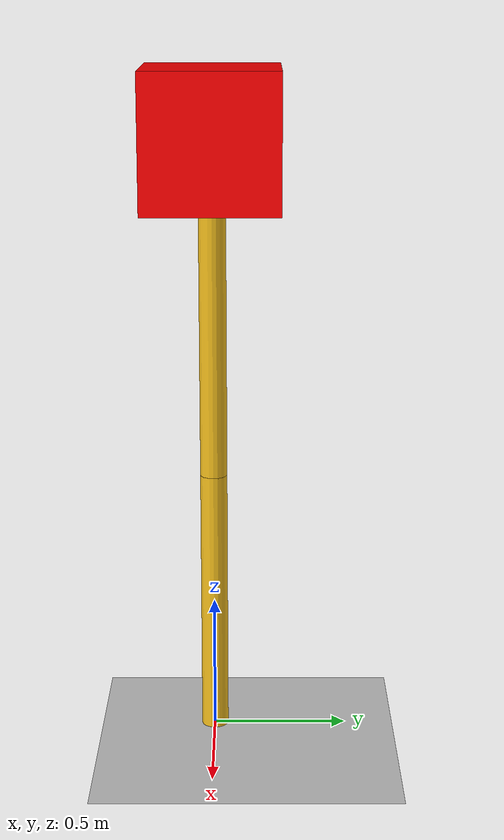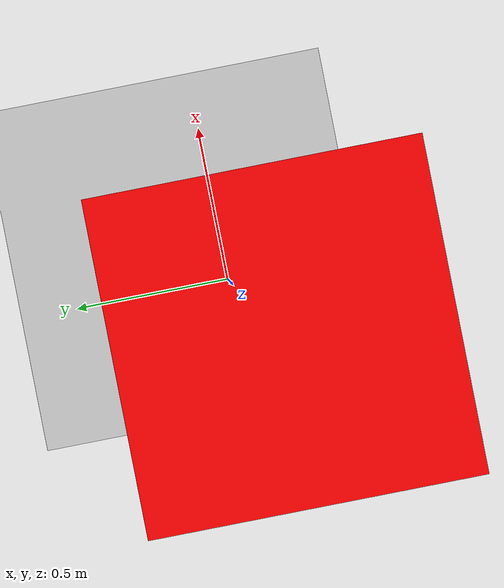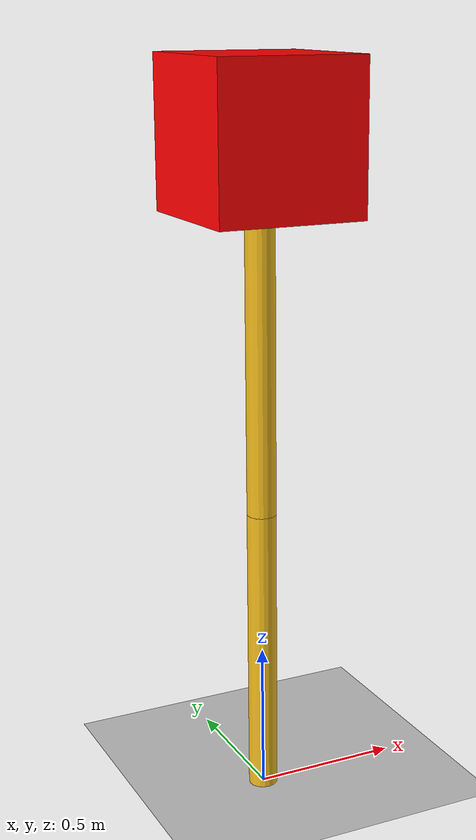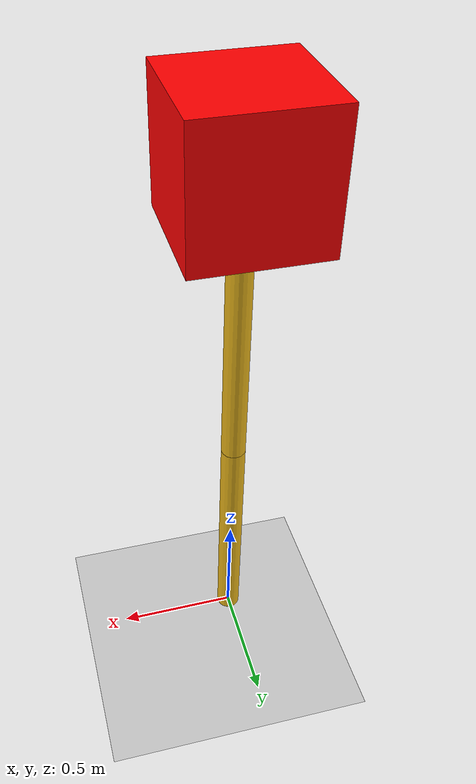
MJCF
<mujoco>
    <default>
        <geom type="capsule" size=".05" rgba=".9 .7 .1 1" mass="1"/>
        <joint type="hinge" axis="0 1 0" pos="0 0 0"/>
    </default>
    <actuator>
        <motor name="m1" gear="1" joint="hinge_1" ctrlrange="-100 100" ctrllimited="true"/>
        <motor name="m2" gear="1" joint="hinge_2" ctrlrange="-100 100" ctrllimited="true"/>
    </actuator>
    <option gravity="0 0 -10" timestep="0.001"/>
    <worldbody>
        <body pos="0 0 0">
            <geom name="floor" type="plane" size="10 10 0.1" rgba="0.8 0.8 0.8 1"/>
        </body>
        <body name="mass" pos="0 0 2.25">
            <site name="IMU" pos="0 0 0"/>
            <joint type="slide" axis="0 0 1"/>
            <geom type="box" size="0.25 0.25 0.25" rgba="1 0 0 1" mass="1"/>
            <body name="leg2" pos="0 0 -0.25">
                <joint name="hinge_1" limited="true" range="-90 90"/>
                <geom name="l2" fromto="0 0 -1 0 0 0" contype="0" mass=".1"/>
                <body name="leg1" pos="0 0 -1">
                    <geom name="l1" fromto="0 0 -1 0 0 0" mass=".1"/>
                    <site name="s" pos="0 0 -1"/>
                    <joint name="hinge_2" stiffness="20" damping="1.0" springref="70"/>
                </body>
            </body>
        </body>
    </worldbody>
    <sensor>
        <accelerometer name="accelerometer" site="IMU"/>
    </sensor>
</mujoco>
